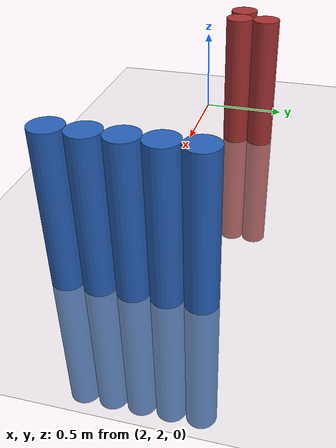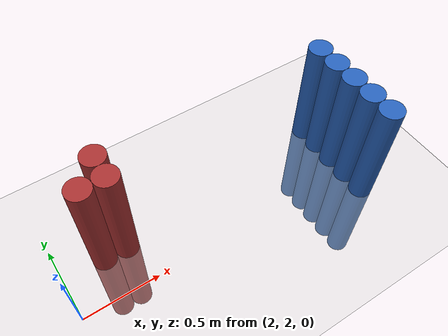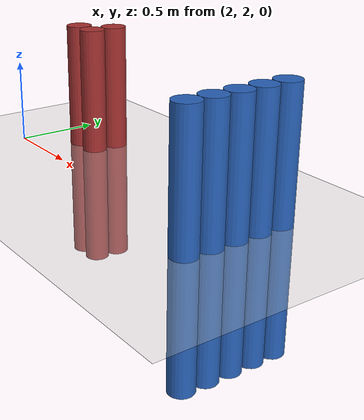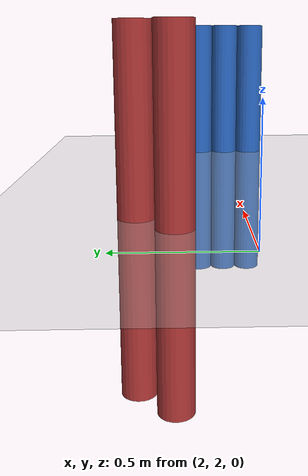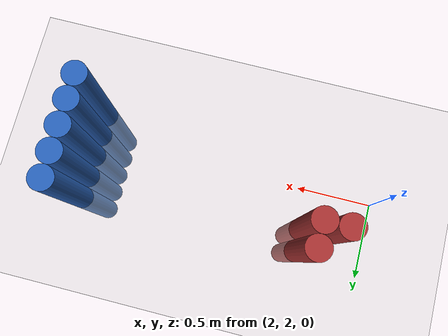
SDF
<sdf version="1.6">
 <world name="default">
  <model name="ground_plane">
   <static>1</static>
   <link name="link">
    <collision name="collision">
     <geometry><plane><normal>0 0 1</normal><size>100 100</size></plane></geometry>
     <surface><friction><ode><mu>100</mu><mu2>50</mu2></ode></friction></surface>
    </collision>
    <visual name="visual">
     <cast_shadows>0</cast_shadows>
     <geometry><plane><normal>0 0 1</normal><size>100 100</size></plane></geometry>
     <material>
      <script><uri>file://media/materials/scripts/gazebo.material</uri><name>Gazebo/Grey</name></script>
     </material>
    </visual>
   </link>
  </model>
  <model name="unit_cylinder_138">
   <static>1</static>
   <pose>3.925000 1.825000 0.000000 0.000000 0.000000 0.000000</pose>
   <link name="link">
    <inertial>
     <mass>1</mass>
     <inertia><ixx>0.145833</ixx><ixy>0</ixy><ixz>0</ixz><iyy>0.145833</iyy><iyz>0</iyz><izz>0.125</izz></inertia>
    </inertial>
    <collision name="collision">
     <geometry><cylinder><radius>0.075000</radius><length>1.5</length></cylinder></geometry>
    </collision>
    <visual name="visual">
     <geometry><cylinder><radius>0.075000</radius><length>1.5</length></cylinder></geometry>
     <material>
      <ambient>0.152000 0.379000 0.720000 1</ambient>
      <diffuse>0.152000 0.379000 0.720000 1</diffuse>
     </material>
     <material>
      <script><name>Gazebo/Grey</name><uri>file://media/materials/scripts/gazebo.material</uri></script>
     </material>
    </visual>
   </link>
  </model>
  <model name="unit_cylinder_140">
   <static>1</static>
   <pose>3.925000 1.975000 0.000000 0.000000 0.000000 0.000000</pose>
   <link name="link">
    <inertial>
     <mass>1</mass>
     <inertia><ixx>0.145833</ixx><ixy>0</ixy><ixz>0</ixz><iyy>0.145833</iyy><iyz>0</iyz><izz>0.125</izz></inertia>
    </inertial>
    <collision name="collision">
     <geometry><cylinder><radius>0.075000</radius><length>1.5</length></cylinder></geometry>
    </collision>
    <visual name="visual">
     <geometry><cylinder><radius>0.075000</radius><length>1.5</length></cylinder></geometry>
     <material>
      <ambient>0.152000 0.379000 0.720000 1</ambient>
      <diffuse>0.152000 0.379000 0.720000 1</diffuse>
     </material>
     <material>
      <script><name>Gazebo/Grey</name><uri>file://media/materials/scripts/gazebo.material</uri></script>
     </material>
    </visual>
   </link>
  </model>
  <model name="unit_cylinder_142">
   <static>1</static>
   <pose>3.925000 2.125000 0.000000 0.000000 0.000000 0.000000</pose>
   <link name="link">
    <inertial>
     <mass>1</mass>
     <inertia><ixx>0.145833</ixx><ixy>0</ixy><ixz>0</ixz><iyy>0.145833</iyy><iyz>0</iyz><izz>0.125</izz></inertia>
    </inertial>
    <collision name="collision">
     <geometry><cylinder><radius>0.075000</radius><length>1.5</length></cylinder></geometry>
    </collision>
    <visual name="visual">
     <geometry><cylinder><radius>0.075000</radius><length>1.5</length></cylinder></geometry>
     <material>
      <ambient>0.152000 0.379000 0.720000 1</ambient>
      <diffuse>0.152000 0.379000 0.720000 1</diffuse>
     </material>
     <material>
      <script><name>Gazebo/Grey</name><uri>file://media/materials/scripts/gazebo.material</uri></script>
     </material>
    </visual>
   </link>
  </model>
  <model name="unit_cylinder_144">
   <static>1</static>
   <pose>3.925000 2.275000 0.000000 0.000000 0.000000 0.000000</pose>
   <link name="link">
    <inertial>
     <mass>1</mass>
     <inertia><ixx>0.145833</ixx><ixy>0</ixy><ixz>0</ixz><iyy>0.145833</iyy><iyz>0</iyz><izz>0.125</izz></inertia>
    </inertial>
    <collision name="collision">
     <geometry><cylinder><radius>0.075000</radius><length>1.5</length></cylinder></geometry>
    </collision>
    <visual name="visual">
     <geometry><cylinder><radius>0.075000</radius><length>1.5</length></cylinder></geometry>
     <material>
      <ambient>0.152000 0.379000 0.720000 1</ambient>
      <diffuse>0.152000 0.379000 0.720000 1</diffuse>
     </material>
     <material>
      <script><name>Gazebo/Grey</name><uri>file://media/materials/scripts/gazebo.material</uri></script>
     </material>
    </visual>
   </link>
  </model>
  <model name="unit_cylinder_146">
   <static>1</static>
   <pose>3.925000 2.425000 0.000000 0.000000 0.000000 0.000000</pose>
   <link name="link">
    <inertial>
     <mass>1</mass>
     <inertia><ixx>0.145833</ixx><ixy>0</ixy><ixz>0</ixz><iyy>0.145833</iyy><iyz>0</iyz><izz>0.125</izz></inertia>
    </inertial>
    <collision name="collision">
     <geometry><cylinder><radius>0.075000</radius><length>1.5</length></cylinder></geometry>
    </collision>
    <visual name="visual">
     <geometry><cylinder><radius>0.075000</radius><length>1.5</length></cylinder></geometry>
     <material>
      <ambient>0.152000 0.379000 0.720000 1</ambient>
      <diffuse>0.152000 0.379000 0.720000 1</diffuse>
     </material>
     <material>
      <script><name>Gazebo/Grey</name><uri>file://media/materials/scripts/gazebo.material</uri></script>
     </material>
    </visual>
   </link>
  </model>
  <model name="unit_cylinder_284">
   <static>1</static>
   <pose>2.275000 2.275000 0.000000 0.000000 0.000000 0.000000</pose>
   <link name="link">
    <inertial>
     <mass>1</mass>
     <inertia><ixx>0.145833</ixx><ixy>0</ixy><ixz>0</ixz><iyy>0.145833</iyy><iyz>0</iyz><izz>0.125</izz></inertia>
    </inertial>
    <collision name="collision">
     <geometry><cylinder><radius>0.075000</radius><length>1.5</length></cylinder></geometry>
    </collision>
    <visual name="visual">
     <geometry><cylinder><radius>0.075000</radius><length>1.5</length></cylinder></geometry>
     <material>
      <ambient>0.648000 0.192000 0.192000 1</ambient>
      <diffuse>0.648000 0.192000 0.192000 1</diffuse>
     </material>
     <material>
      <script><name>Gazebo/Grey</name><uri>file://media/materials/scripts/gazebo.material</uri></script>
     </material>
    </visual>
   </link>
  </model>
  <model name="unit_cylinder_285">
   <static>1</static>
   <pose>2.425000 2.275000 0.000000 0.000000 0.000000 0.000000</pose>
   <link name="link">
    <inertial>
     <mass>1</mass>
     <inertia><ixx>0.145833</ixx><ixy>0</ixy><ixz>0</ixz><iyy>0.145833</iyy><iyz>0</iyz><izz>0.125</izz></inertia>
    </inertial>
    <collision name="collision">
     <geometry><cylinder><radius>0.075000</radius><length>1.5</length></cylinder></geometry>
    </collision>
    <visual name="visual">
     <geometry><cylinder><radius>0.075000</radius><length>1.5</length></cylinder></geometry>
     <material>
      <ambient>0.648000 0.192000 0.192000 1</ambient>
      <diffuse>0.648000 0.192000 0.192000 1</diffuse>
     </material>
     <material>
      <script><name>Gazebo/Grey</name><uri>file://media/materials/scripts/gazebo.material</uri></script>
     </material>
    </visual>
   </link>
  </model>
  <model name="unit_cylinder_286">
   <static>1</static>
   <pose>2.425000 2.425000 0.000000 0.000000 0.000000 0.000000</pose>
   <link name="link">
    <inertial>
     <mass>1</mass>
     <inertia><ixx>0.145833</ixx><ixy>0</ixy><ixz>0</ixz><iyy>0.145833</iyy><iyz>0</iyz><izz>0.125</izz></inertia>
    </inertial>
    <collision name="collision">
     <geometry><cylinder><radius>0.075000</radius><length>1.5</length></cylinder></geometry>
    </collision>
    <visual name="visual">
     <geometry><cylinder><radius>0.075000</radius><length>1.5</length></cylinder></geometry>
     <material>
      <ambient>0.648000 0.192000 0.192000 1</ambient>
      <diffuse>0.648000 0.192000 0.192000 1</diffuse>
     </material>
     <material>
      <script><name>Gazebo/Grey</name><uri>file://media/materials/scripts/gazebo.material</uri></script>
     </material>
    </visual>
   </link>
  </model>
  <model name="unit_cylinder_328">
   <static>1</static>
   <pose>3.925000 1.825000 0.000000 0.000000 0.000000 0.000000</pose>
   <link name="link">
    <inertial>
     <mass>1</mass>
     <inertia><ixx>0.145833</ixx><ixy>0</ixy><ixz>0</ixz><iyy>0.145833</iyy><iyz>0</iyz><izz>0.125</izz></inertia>
    </inertial>
    <collision name="collision">
     <geometry><cylinder><radius>0.075000</radius><length>1.5</length></cylinder></geometry>
    </collision>
    <visual name="visual">
     <geometry><cylinder><radius>0.075000</radius><length>1.5</length></cylinder></geometry>
     <material>
      <ambient>0.152000 0.379000 0.720000 1</ambient>
      <diffuse>0.152000 0.379000 0.720000 1</diffuse>
     </material>
     <material>
      <script><name>Gazebo/Grey</name><uri>file://media/materials/scripts/gazebo.material</uri></script>
     </material>
    </visual>
   </link>
  </model>
  <model name="unit_cylinder_329">
   <static>1</static>
   <pose>3.925000 1.975000 0.000000 0.000000 0.000000 0.000000</pose>
   <link name="link">
    <inertial>
     <mass>1</mass>
     <inertia><ixx>0.145833</ixx><ixy>0</ixy><ixz>0</ixz><iyy>0.145833</iyy><iyz>0</iyz><izz>0.125</izz></inertia>
    </inertial>
    <collision name="collision">
     <geometry><cylinder><radius>0.075000</radius><length>1.5</length></cylinder></geometry>
    </collision>
    <visual name="visual">
     <geometry><cylinder><radius>0.075000</radius><length>1.5</length></cylinder></geometry>
     <material>
      <ambient>0.152000 0.379000 0.720000 1</ambient>
      <diffuse>0.152000 0.379000 0.720000 1</diffuse>
     </material>
     <material>
      <script><name>Gazebo/Grey</name><uri>file://media/materials/scripts/gazebo.material</uri></script>
     </material>
    </visual>
   </link>
  </model>
  <model name="unit_cylinder_330">
   <static>1</static>
   <pose>3.925000 2.125000 0.000000 0.000000 0.000000 0.000000</pose>
   <link name="link">
    <inertial>
     <mass>1</mass>
     <inertia><ixx>0.145833</ixx><ixy>0</ixy><ixz>0</ixz><iyy>0.145833</iyy><iyz>0</iyz><izz>0.125</izz></inertia>
    </inertial>
    <collision name="collision">
     <geometry><cylinder><radius>0.075000</radius><length>1.5</length></cylinder></geometry>
    </collision>
    <visual name="visual">
     <geometry><cylinder><radius>0.075000</radius><length>1.5</length></cylinder></geometry>
     <material>
      <ambient>0.152000 0.379000 0.720000 1</ambient>
      <diffuse>0.152000 0.379000 0.720000 1</diffuse>
     </material>
     <material>
      <script><name>Gazebo/Grey</name><uri>file://media/materials/scripts/gazebo.material</uri></script>
     </material>
    </visual>
   </link>
  </model>
  <model name="unit_cylinder_331">
   <static>1</static>
   <pose>3.925000 2.275000 0.000000 0.000000 0.000000 0.000000</pose>
   <link name="link">
    <inertial>
     <mass>1</mass>
     <inertia><ixx>0.145833</ixx><ixy>0</ixy><ixz>0</ixz><iyy>0.145833</iyy><iyz>0</iyz><izz>0.125</izz></inertia>
    </inertial>
    <collision name="collision">
     <geometry><cylinder><radius>0.075000</radius><length>1.5</length></cylinder></geometry>
    </collision>
    <visual name="visual">
     <geometry><cylinder><radius>0.075000</radius><length>1.5</length></cylinder></geometry>
     <material>
      <ambient>0.152000 0.379000 0.720000 1</ambient>
      <diffuse>0.152000 0.379000 0.720000 1</diffuse>
     </material>
     <material>
      <script><name>Gazebo/Grey</name><uri>file://media/materials/scripts/gazebo.material</uri></script>
     </material>
    </visual>
   </link>
  </model>
 </world>
</sdf>
